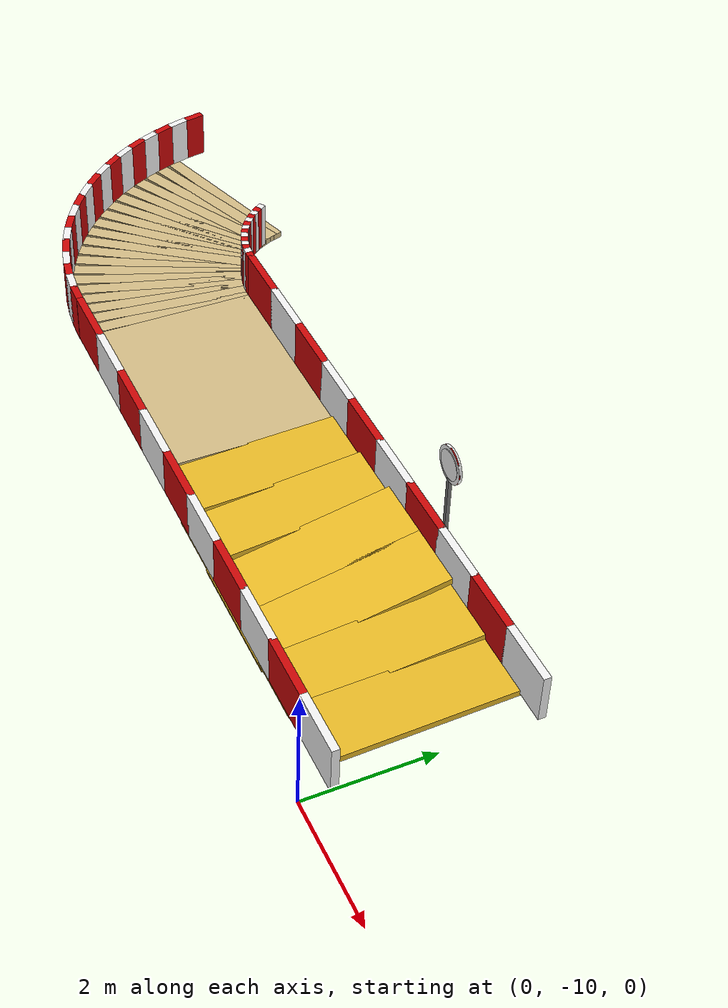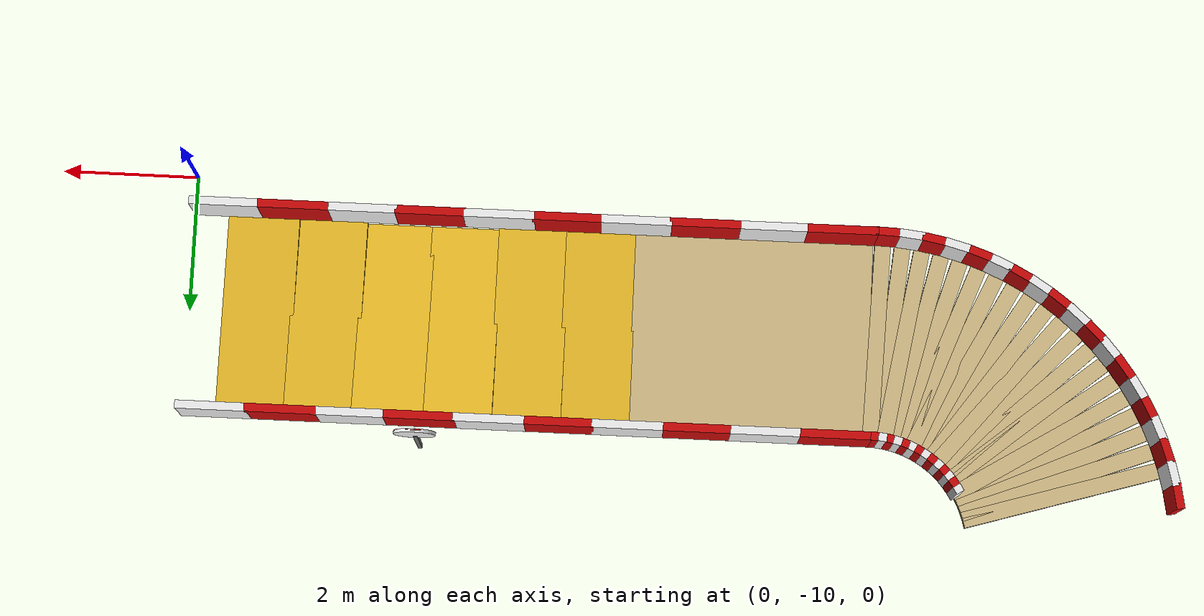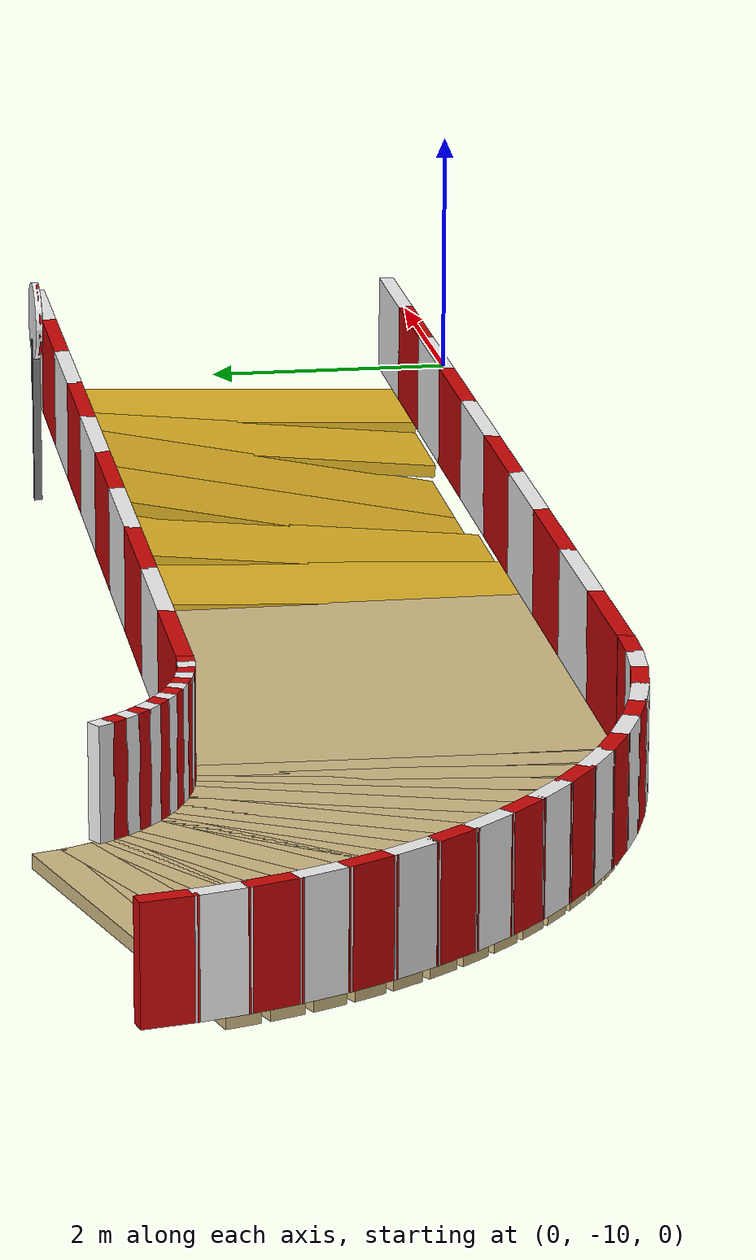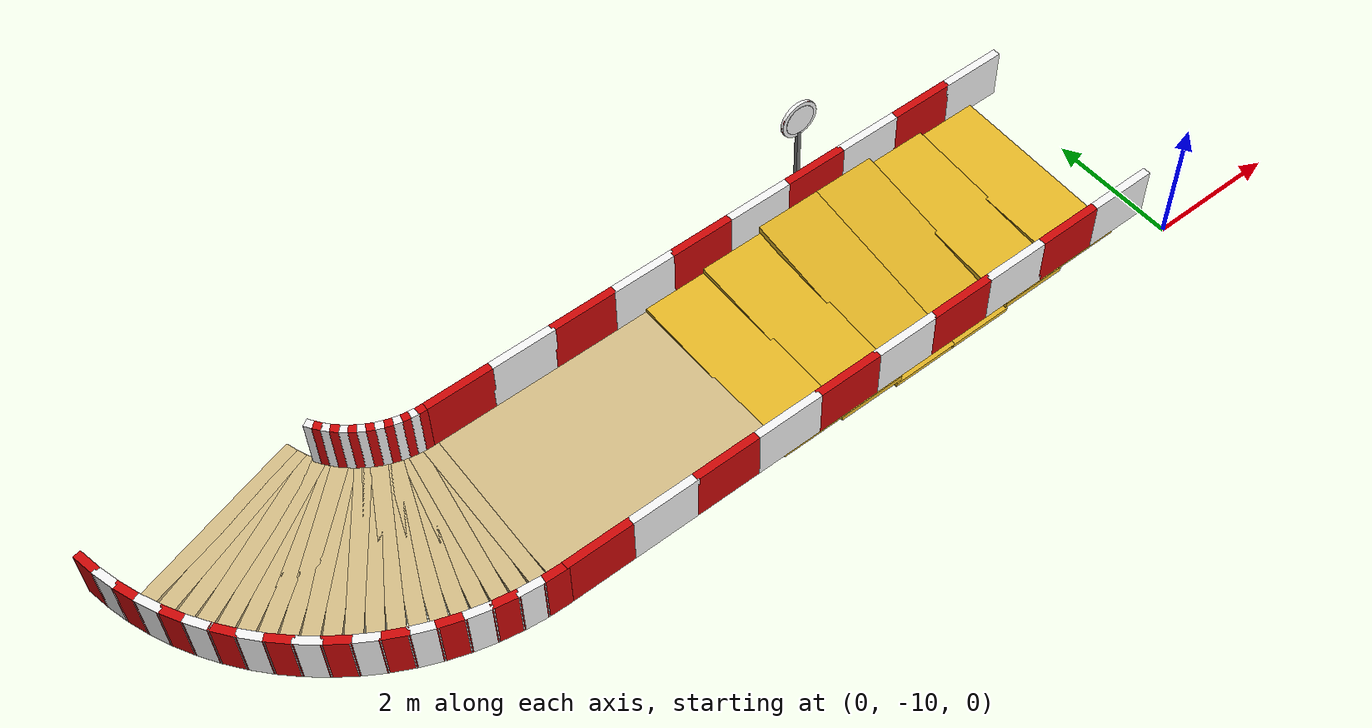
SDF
<sdf version="1.6">
 <world name="evrenos_teknofest_2026">
  <include><uri>model://sun</uri></include>
  <model name="main_course">
   <static>true</static>
   <link name="bottom_before_turn_0">
    <pose>-8.2500 -8.0000 -0.0500 0.000000 0.000000 0.000000</pose>
    <collision name="bottom_before_turn_0_collision">
     <geometry><box><size>3.5000 3.0000 0.1000</size></box></geometry>
    </collision>
    <visual name="bottom_before_turn_0_visual">
     <geometry><box><size>3.5000 3.0000 0.1000</size></box></geometry>
     <material><ambient>0.82 0.73 0.52 1</ambient><diffuse>0.82 0.73 0.52 1</diffuse></material>
    </visual>
   </link>
   <link name="side_slope_0">
    <pose>-1.0000 -8.0000 -0.0500 0.040000 0.000000 0.000000</pose>
    <collision name="side_slope_0_collision">
     <geometry><box><size>1.0500 3.0000 0.1000</size></box></geometry>
    </collision>
    <visual name="side_slope_0_visual">
     <geometry><box><size>1.0500 3.0000 0.1000</size></box></geometry>
     <material><ambient>0.9 0.72 0.15 1</ambient><diffuse>0.9 0.72 0.15 1</diffuse></material>
    </visual>
   </link>
   <link name="side_slope_1">
    <pose>-2.0000 -8.0000 -0.0500 0.100000 0.000000 0.000000</pose>
    <collision name="side_slope_1_collision">
     <geometry><box><size>1.0500 3.0000 0.1000</size></box></geometry>
    </collision>
    <visual name="side_slope_1_visual">
     <geometry><box><size>1.0500 3.0000 0.1000</size></box></geometry>
     <material><ambient>0.9 0.72 0.15 1</ambient><diffuse>0.9 0.72 0.15 1</diffuse></material>
    </visual>
   </link>
   <link name="side_slope_2">
    <pose>-3.0000 -8.0000 -0.0500 0.197396 0.000000 0.000000</pose>
    <collision name="side_slope_2_collision">
     <geometry><box><size>1.0500 3.0000 0.1000</size></box></geometry>
    </collision>
    <visual name="side_slope_2_visual">
     <geometry><box><size>1.0500 3.0000 0.1000</size></box></geometry>
     <material><ambient>0.9 0.72 0.15 1</ambient><diffuse>0.9 0.72 0.15 1</diffuse></material>
    </visual>
   </link>
   <link name="side_slope_3">
    <pose>-4.0000 -8.0000 -0.0500 0.197396 0.000000 0.000000</pose>
    <collision name="side_slope_3_collision">
     <geometry><box><size>1.0500 3.0000 0.1000</size></box></geometry>
    </collision>
    <visual name="side_slope_3_visual">
     <geometry><box><size>1.0500 3.0000 0.1000</size></box></geometry>
     <material><ambient>0.9 0.72 0.15 1</ambient><diffuse>0.9 0.72 0.15 1</diffuse></material>
    </visual>
   </link>
   <link name="side_slope_4">
    <pose>-5.0000 -8.0000 -0.0500 0.100000 0.000000 0.000000</pose>
    <collision name="side_slope_4_collision">
     <geometry><box><size>1.0500 3.0000 0.1000</size></box></geometry>
    </collision>
    <visual name="side_slope_4_visual">
     <geometry><box><size>1.0500 3.0000 0.1000</size></box></geometry>
     <material><ambient>0.9 0.72 0.15 1</ambient><diffuse>0.9 0.72 0.15 1</diffuse></material>
    </visual>
   </link>
   <link name="side_slope_5">
    <pose>-6.0000 -8.0000 -0.0500 0.040000 0.000000 0.000000</pose>
    <collision name="side_slope_5_collision">
     <geometry><box><size>1.0500 3.0000 0.1000</size></box></geometry>
    </collision>
    <visual name="side_slope_5_visual">
     <geometry><box><size>1.0500 3.0000 0.1000</size></box></geometry>
     <material><ambient>0.9 0.72 0.15 1</ambient><diffuse>0.9 0.72 0.15 1</diffuse></material>
    </visual>
   </link>
   <link name="left_turn_road_0">
    <pose>-10.0982 -7.9984 -0.0500 0.000000 0.000000 -3.174318</pose>
    <collision name="left_turn_road_0_collision">
     <geometry><box><size>0.2356 3.0000 0.1000</size></box></geometry>
    </collision>
    <visual name="left_turn_road_0_visual">
     <geometry><box><size>0.2356 3.0000 0.1000</size></box></geometry>
     <material><ambient>0.82 0.73 0.52 1</ambient><diffuse>0.82 0.73 0.52 1</diffuse></material>
    </visual>
   </link>
   <link name="left_turn_road_1">
    <pose>-10.2941 -7.9856 -0.0500 0.000000 0.000000 -3.239767</pose>
    <collision name="left_turn_road_1_collision">
     <geometry><box><size>0.2356 3.0000 0.1000</size></box></geometry>
    </collision>
    <visual name="left_turn_road_1_visual">
     <geometry><box><size>0.2356 3.0000 0.1000</size></box></geometry>
     <material><ambient>0.82 0.73 0.52 1</ambient><diffuse>0.82 0.73 0.52 1</diffuse></material>
    </visual>
   </link>
   <link name="left_turn_road_2">
    <pose>-10.4887 -7.9599 -0.0500 0.000000 0.000000 -3.305217</pose>
    <collision name="left_turn_road_2_collision">
     <geometry><box><size>0.2356 3.0000 0.1000</size></box></geometry>
    </collision>
    <visual name="left_turn_road_2_visual">
     <geometry><box><size>0.2356 3.0000 0.1000</size></box></geometry>
     <material><ambient>0.82 0.73 0.52 1</ambient><diffuse>0.82 0.73 0.52 1</diffuse></material>
    </visual>
   </link>
   <link name="left_turn_road_3">
    <pose>-10.6812 -7.9216 -0.0500 0.000000 0.000000 -3.370667</pose>
    <collision name="left_turn_road_3_collision">
     <geometry><box><size>0.2356 3.0000 0.1000</size></box></geometry>
    </collision>
    <visual name="left_turn_road_3_visual">
     <geometry><box><size>0.2356 3.0000 0.1000</size></box></geometry>
     <material><ambient>0.82 0.73 0.52 1</ambient><diffuse>0.82 0.73 0.52 1</diffuse></material>
    </visual>
   </link>
   <link name="left_turn_road_4">
    <pose>-10.8709 -7.8708 -0.0500 0.000000 0.000000 -3.436117</pose>
    <collision name="left_turn_road_4_collision">
     <geometry><box><size>0.2356 3.0000 0.1000</size></box></geometry>
    </collision>
    <visual name="left_turn_road_4_visual">
     <geometry><box><size>0.2356 3.0000 0.1000</size></box></geometry>
     <material><ambient>0.82 0.73 0.52 1</ambient><diffuse>0.82 0.73 0.52 1</diffuse></material>
    </visual>
   </link>
   <link name="left_turn_road_5">
    <pose>-11.0568 -7.8077 -0.0500 0.000000 0.000000 -3.501567</pose>
    <collision name="left_turn_road_5_collision">
     <geometry><box><size>0.2356 3.0000 0.1000</size></box></geometry>
    </collision>
    <visual name="left_turn_road_5_visual">
     <geometry><box><size>0.2356 3.0000 0.1000</size></box></geometry>
     <material><ambient>0.82 0.73 0.52 1</ambient><diffuse>0.82 0.73 0.52 1</diffuse></material>
    </visual>
   </link>
   <link name="left_turn_road_6">
    <pose>-11.2381 -7.7326 -0.0500 0.000000 0.000000 -3.567017</pose>
    <collision name="left_turn_road_6_collision">
     <geometry><box><size>0.2356 3.0000 0.1000</size></box></geometry>
    </collision>
    <visual name="left_turn_road_6_visual">
     <geometry><box><size>0.2356 3.0000 0.1000</size></box></geometry>
     <material><ambient>0.82 0.73 0.52 1</ambient><diffuse>0.82 0.73 0.52 1</diffuse></material>
    </visual>
   </link>
   <link name="left_turn_road_7">
    <pose>-11.4142 -7.6458 -0.0500 0.000000 0.000000 -3.632467</pose>
    <collision name="left_turn_road_7_collision">
     <geometry><box><size>0.2356 3.0000 0.1000</size></box></geometry>
    </collision>
    <visual name="left_turn_road_7_visual">
     <geometry><box><size>0.2356 3.0000 0.1000</size></box></geometry>
     <material><ambient>0.82 0.73 0.52 1</ambient><diffuse>0.82 0.73 0.52 1</diffuse></material>
    </visual>
   </link>
   <link name="left_turn_road_8">
    <pose>-11.5842 -7.5476 -0.0500 0.000000 0.000000 -3.697916</pose>
    <collision name="left_turn_road_8_collision">
     <geometry><box><size>0.2356 3.0000 0.1000</size></box></geometry>
    </collision>
    <visual name="left_turn_road_8_visual">
     <geometry><box><size>0.2356 3.0000 0.1000</size></box></geometry>
     <material><ambient>0.82 0.73 0.52 1</ambient><diffuse>0.82 0.73 0.52 1</diffuse></material>
    </visual>
   </link>
   <link name="left_turn_road_9">
    <pose>-11.7474 -7.4385 -0.0500 0.000000 0.000000 -3.763366</pose>
    <collision name="left_turn_road_9_collision">
     <geometry><box><size>0.2356 3.0000 0.1000</size></box></geometry>
    </collision>
    <visual name="left_turn_road_9_visual">
     <geometry><box><size>0.2356 3.0000 0.1000</size></box></geometry>
     <material><ambient>0.82 0.73 0.52 1</ambient><diffuse>0.82 0.73 0.52 1</diffuse></material>
    </visual>
   </link>
   <link name="left_turn_road_10">
    <pose>-11.9032 -7.3190 -0.0500 0.000000 0.000000 -3.828816</pose>
    <collision name="left_turn_road_10_collision">
     <geometry><box><size>0.2356 3.0000 0.1000</size></box></geometry>
    </collision>
    <visual name="left_turn_road_10_visual">
     <geometry><box><size>0.2356 3.0000 0.1000</size></box></geometry>
     <material><ambient>0.82 0.73 0.52 1</ambient><diffuse>0.82 0.73 0.52 1</diffuse></material>
    </visual>
   </link>
   <link name="left_turn_road_11">
    <pose>-12.0508 -7.1896 -0.0500 0.000000 0.000000 -3.894266</pose>
    <collision name="left_turn_road_11_collision">
     <geometry><box><size>0.2356 3.0000 0.1000</size></box></geometry>
    </collision>
    <visual name="left_turn_road_11_visual">
     <geometry><box><size>0.2356 3.0000 0.1000</size></box></geometry>
     <material><ambient>0.82 0.73 0.52 1</ambient><diffuse>0.82 0.73 0.52 1</diffuse></material>
    </visual>
   </link>
   <link name="left_turn_road_12">
    <pose>-12.1896 -7.0508 -0.0500 0.000000 0.000000 -3.959716</pose>
    <collision name="left_turn_road_12_collision">
     <geometry><box><size>0.2356 3.0000 0.1000</size></box></geometry>
    </collision>
    <visual name="left_turn_road_12_visual">
     <geometry><box><size>0.2356 3.0000 0.1000</size></box></geometry>
     <material><ambient>0.82 0.73 0.52 1</ambient><diffuse>0.82 0.73 0.52 1</diffuse></material>
    </visual>
   </link>
   <link name="left_turn_road_13">
    <pose>-12.3190 -6.9032 -0.0500 0.000000 0.000000 -4.025166</pose>
    <collision name="left_turn_road_13_collision">
     <geometry><box><size>0.2356 3.0000 0.1000</size></box></geometry>
    </collision>
    <visual name="left_turn_road_13_visual">
     <geometry><box><size>0.2356 3.0000 0.1000</size></box></geometry>
     <material><ambient>0.82 0.73 0.52 1</ambient><diffuse>0.82 0.73 0.52 1</diffuse></material>
    </visual>
   </link>
   <link name="left_turn_road_14">
    <pose>-12.4385 -6.7474 -0.0500 0.000000 0.000000 -4.090615</pose>
    <collision name="left_turn_road_14_collision">
     <geometry><box><size>0.2356 3.0000 0.1000</size></box></geometry>
    </collision>
    <visual name="left_turn_road_14_visual">
     <geometry><box><size>0.2356 3.0000 0.1000</size></box></geometry>
     <material><ambient>0.82 0.73 0.52 1</ambient><diffuse>0.82 0.73 0.52 1</diffuse></material>
    </visual>
   </link>
   <link name="left_turn_road_15">
    <pose>-12.5476 -6.5842 -0.0500 0.000000 0.000000 -4.156065</pose>
    <collision name="left_turn_road_15_collision">
     <geometry><box><size>0.2356 3.0000 0.1000</size></box></geometry>
    </collision>
    <visual name="left_turn_road_15_visual">
     <geometry><box><size>0.2356 3.0000 0.1000</size></box></geometry>
     <material><ambient>0.82 0.73 0.52 1</ambient><diffuse>0.82 0.73 0.52 1</diffuse></material>
    </visual>
   </link>
   <link name="left_turn_road_16">
    <pose>-12.6458 -6.4142 -0.0500 0.000000 0.000000 -4.221515</pose>
    <collision name="left_turn_road_16_collision">
     <geometry><box><size>0.2356 3.0000 0.1000</size></box></geometry>
    </collision>
    <visual name="left_turn_road_16_visual">
     <geometry><box><size>0.2356 3.0000 0.1000</size></box></geometry>
     <material><ambient>0.82 0.73 0.52 1</ambient><diffuse>0.82 0.73 0.52 1</diffuse></material>
    </visual>
   </link>
   <link name="left_turn_road_17">
    <pose>-12.7326 -6.2381 -0.0500 0.000000 0.000000 -4.286965</pose>
    <collision name="left_turn_road_17_collision">
     <geometry><box><size>0.2356 3.0000 0.1000</size></box></geometry>
    </collision>
    <visual name="left_turn_road_17_visual">
     <geometry><box><size>0.2356 3.0000 0.1000</size></box></geometry>
     <material><ambient>0.82 0.73 0.52 1</ambient><diffuse>0.82 0.73 0.52 1</diffuse></material>
    </visual>
   </link>
   <link name="left_turn_road_18">
    <pose>-12.8077 -6.0568 -0.0500 0.000000 0.000000 -4.352415</pose>
    <collision name="left_turn_road_18_collision">
     <geometry><box><size>0.2356 3.0000 0.1000</size></box></geometry>
    </collision>
    <visual name="left_turn_road_18_visual">
     <geometry><box><size>0.2356 3.0000 0.1000</size></box></geometry>
     <material><ambient>0.82 0.73 0.52 1</ambient><diffuse>0.82 0.73 0.52 1</diffuse></material>
    </visual>
   </link>
   <link name="left_turn_road_19">
    <pose>-12.8708 -5.8709 -0.0500 0.000000 0.000000 -4.417865</pose>
    <collision name="left_turn_road_19_collision">
     <geometry><box><size>0.2356 3.0000 0.1000</size></box></geometry>
    </collision>
    <visual name="left_turn_road_19_visual">
     <geometry><box><size>0.2356 3.0000 0.1000</size></box></geometry>
     <material><ambient>0.82 0.73 0.52 1</ambient><diffuse>0.82 0.73 0.52 1</diffuse></material>
    </visual>
   </link>
   <link name="bottom_bar_-1_0">
    <pose>-9.5000 -9.5000 0.4000 0.000000 0.000000 0.000000</pose>
    <collision name="bottom_bar_-1_0_collision">
     <geometry><box><size>1.0300 0.1200 0.8000</size></box></geometry>
    </collision>
    <visual name="bottom_bar_-1_0_visual">
     <geometry><box><size>1.0300 0.1200 0.8000</size></box></geometry>
     <material><ambient>0.8 0.03 0.03 1</ambient><diffuse>0.8 0.03 0.03 1</diffuse></material>
    </visual>
   </link>
   <link name="bottom_bar_-1_1">
    <pose>-8.5000 -9.5000 0.4000 0.000000 0.000000 0.000000</pose>
    <collision name="bottom_bar_-1_1_collision">
     <geometry><box><size>1.0300 0.1200 0.8000</size></box></geometry>
    </collision>
    <visual name="bottom_bar_-1_1_visual">
     <geometry><box><size>1.0300 0.1200 0.8000</size></box></geometry>
     <material><ambient>0.95 0.95 0.95 1</ambient><diffuse>0.95 0.95 0.95 1</diffuse></material>
    </visual>
   </link>
   <link name="bottom_bar_-1_2">
    <pose>-7.5000 -9.5000 0.4000 0.000000 0.000000 0.000000</pose>
    <collision name="bottom_bar_-1_2_collision">
     <geometry><box><size>1.0300 0.1200 0.8000</size></box></geometry>
    </collision>
    <visual name="bottom_bar_-1_2_visual">
     <geometry><box><size>1.0300 0.1200 0.8000</size></box></geometry>
     <material><ambient>0.8 0.03 0.03 1</ambient><diffuse>0.8 0.03 0.03 1</diffuse></material>
    </visual>
   </link>
   <link name="bottom_bar_-1_3">
    <pose>-6.5000 -9.5000 0.4000 0.000000 0.000000 0.000000</pose>
    <collision name="bottom_bar_-1_3_collision">
     <geometry><box><size>1.0300 0.1200 0.8000</size></box></geometry>
    </collision>
    <visual name="bottom_bar_-1_3_visual">
     <geometry><box><size>1.0300 0.1200 0.8000</size></box></geometry>
     <material><ambient>0.95 0.95 0.95 1</ambient><diffuse>0.95 0.95 0.95 1</diffuse></material>
    </visual>
   </link>
   <link name="bottom_bar_-1_4">
    <pose>-5.5000 -9.5000 0.4000 0.000000 0.000000 0.000000</pose>
    <collision name="bottom_bar_-1_4_collision">
     <geometry><box><size>1.0300 0.1200 0.8000</size></box></geometry>
    </collision>
    <visual name="bottom_bar_-1_4_visual">
     <geometry><box><size>1.0300 0.1200 0.8000</size></box></geometry>
     <material><ambient>0.8 0.03 0.03 1</ambient><diffuse>0.8 0.03 0.03 1</diffuse></material>
    </visual>
   </link>
   <link name="bottom_bar_-1_5">
    <pose>-4.5000 -9.5000 0.4000 0.000000 0.000000 0.000000</pose>
    <collision name="bottom_bar_-1_5_collision">
     <geometry><box><size>1.0300 0.1200 0.8000</size></box></geometry>
    </collision>
    <visual name="bottom_bar_-1_5_visual">
     <geometry><box><size>1.0300 0.1200 0.8000</size></box></geometry>
     <material><ambient>0.95 0.95 0.95 1</ambient><diffuse>0.95 0.95 0.95 1</diffuse></material>
    </visual>
   </link>
   <link name="bottom_bar_-1_6">
    <pose>-3.5000 -9.5000 0.4000 0.000000 0.000000 0.000000</pose>
    <collision name="bottom_bar_-1_6_collision">
     <geometry><box><size>1.0300 0.1200 0.8000</size></box></geometry>
    </collision>
    <visual name="bottom_bar_-1_6_visual">
     <geometry><box><size>1.0300 0.1200 0.8000</size></box></geometry>
     <material><ambient>0.8 0.03 0.03 1</ambient><diffuse>0.8 0.03 0.03 1</diffuse></material>
    </visual>
   </link>
   <link name="bottom_bar_-1_7">
    <pose>-2.5000 -9.5000 0.4000 0.000000 0.000000 0.000000</pose>
    <collision name="bottom_bar_-1_7_collision">
     <geometry><box><size>1.0300 0.1200 0.8000</size></box></geometry>
    </collision>
    <visual name="bottom_bar_-1_7_visual">
     <geometry><box><size>1.0300 0.1200 0.8000</size></box></geometry>
     <material><ambient>0.95 0.95 0.95 1</ambient><diffuse>0.95 0.95 0.95 1</diffuse></material>
    </visual>
   </link>
   <link name="bottom_bar_-1_8">
    <pose>-1.5000 -9.5000 0.4000 0.000000 0.000000 0.000000</pose>
    <collision name="bottom_bar_-1_8_collision">
     <geometry><box><size>1.0300 0.1200 0.8000</size></box></geometry>
    </collision>
    <visual name="bottom_bar_-1_8_visual">
     <geometry><box><size>1.0300 0.1200 0.8000</size></box></geometry>
     <material><ambient>0.8 0.03 0.03 1</ambient><diffuse>0.8 0.03 0.03 1</diffuse></material>
    </visual>
   </link>
   <link name="bottom_bar_-1_9">
    <pose>-0.5000 -9.5000 0.4000 0.000000 0.000000 0.000000</pose>
    <collision name="bottom_bar_-1_9_collision">
     <geometry><box><size>1.0300 0.1200 0.8000</size></box></geometry>
    </collision>
    <visual name="bottom_bar_-1_9_visual">
     <geometry><box><size>1.0300 0.1200 0.8000</size></box></geometry>
     <material><ambient>0.95 0.95 0.95 1</ambient><diffuse>0.95 0.95 0.95 1</diffuse></material>
    </visual>
   </link>
   <link name="bottom_bar_1_0">
    <pose>-9.5000 -6.5000 0.4000 0.000000 0.000000 0.000000</pose>
    <collision name="bottom_bar_1_0_collision">
     <geometry><box><size>1.0300 0.1200 0.8000</size></box></geometry>
    </collision>
    <visual name="bottom_bar_1_0_visual">
     <geometry><box><size>1.0300 0.1200 0.8000</size></box></geometry>
     <material><ambient>0.8 0.03 0.03 1</ambient><diffuse>0.8 0.03 0.03 1</diffuse></material>
    </visual>
   </link>
   <link name="bottom_bar_1_1">
    <pose>-8.5000 -6.5000 0.4000 0.000000 0.000000 0.000000</pose>
    <collision name="bottom_bar_1_1_collision">
     <geometry><box><size>1.0300 0.1200 0.8000</size></box></geometry>
    </collision>
    <visual name="bottom_bar_1_1_visual">
     <geometry><box><size>1.0300 0.1200 0.8000</size></box></geometry>
     <material><ambient>0.95 0.95 0.95 1</ambient><diffuse>0.95 0.95 0.95 1</diffuse></material>
    </visual>
   </link>
   <link name="bottom_bar_1_2">
    <pose>-7.5000 -6.5000 0.4000 0.000000 0.000000 0.000000</pose>
    <collision name="bottom_bar_1_2_collision">
     <geometry><box><size>1.0300 0.1200 0.8000</size></box></geometry>
    </collision>
    <visual name="bottom_bar_1_2_visual">
     <geometry><box><size>1.0300 0.1200 0.8000</size></box></geometry>
     <material><ambient>0.8 0.03 0.03 1</ambient><diffuse>0.8 0.03 0.03 1</diffuse></material>
    </visual>
   </link>
   <link name="bottom_bar_1_3">
    <pose>-6.5000 -6.5000 0.4000 0.000000 0.000000 0.000000</pose>
    <collision name="bottom_bar_1_3_collision">
     <geometry><box><size>1.0300 0.1200 0.8000</size></box></geometry>
    </collision>
    <visual name="bottom_bar_1_3_visual">
     <geometry><box><size>1.0300 0.1200 0.8000</size></box></geometry>
     <material><ambient>0.95 0.95 0.95 1</ambient><diffuse>0.95 0.95 0.95 1</diffuse></material>
    </visual>
   </link>
   <link name="bottom_bar_1_4">
    <pose>-5.5000 -6.5000 0.4000 0.000000 0.000000 0.000000</pose>
    <collision name="bottom_bar_1_4_collision">
     <geometry><box><size>1.0300 0.1200 0.8000</size></box></geometry>
    </collision>
    <visual name="bottom_bar_1_4_visual">
     <geometry><box><size>1.0300 0.1200 0.8000</size></box></geometry>
     <material><ambient>0.8 0.03 0.03 1</ambient><diffuse>0.8 0.03 0.03 1</diffuse></material>
    </visual>
   </link>
   <link name="bottom_bar_1_5">
    <pose>-4.5000 -6.5000 0.4000 0.000000 0.000000 0.000000</pose>
    <collision name="bottom_bar_1_5_collision">
     <geometry><box><size>1.0300 0.1200 0.8000</size></box></geometry>
    </collision>
    <visual name="bottom_bar_1_5_visual">
     <geometry><box><size>1.0300 0.1200 0.8000</size></box></geometry>
     <material><ambient>0.95 0.95 0.95 1</ambient><diffuse>0.95 0.95 0.95 1</diffuse></material>
    </visual>
   </link>
   <link name="bottom_bar_1_6">
    <pose>-3.5000 -6.5000 0.4000 0.000000 0.000000 0.000000</pose>
    <collision name="bottom_bar_1_6_collision">
     <geometry><box><size>1.0300 0.1200 0.8000</size></box></geometry>
    </collision>
    <visual name="bottom_bar_1_6_visual">
     <geometry><box><size>1.0300 0.1200 0.8000</size></box></geometry>
     <material><ambient>0.8 0.03 0.03 1</ambient><diffuse>0.8 0.03 0.03 1</diffuse></material>
    </visual>
   </link>
   <link name="bottom_bar_1_7">
    <pose>-2.5000 -6.5000 0.4000 0.000000 0.000000 0.000000</pose>
    <collision name="bottom_bar_1_7_collision">
     <geometry><box><size>1.0300 0.1200 0.8000</size></box></geometry>
    </collision>
    <visual name="bottom_bar_1_7_visual">
     <geometry><box><size>1.0300 0.1200 0.8000</size></box></geometry>
     <material><ambient>0.95 0.95 0.95 1</ambient><diffuse>0.95 0.95 0.95 1</diffuse></material>
    </visual>
   </link>
   <link name="bottom_bar_1_8">
    <pose>-1.5000 -6.5000 0.4000 0.000000 0.000000 0.000000</pose>
    <collision name="bottom_bar_1_8_collision">
     <geometry><box><size>1.0300 0.1200 0.8000</size></box></geometry>
    </collision>
    <visual name="bottom_bar_1_8_visual">
     <geometry><box><size>1.0300 0.1200 0.8000</size></box></geometry>
     <material><ambient>0.8 0.03 0.03 1</ambient><diffuse>0.8 0.03 0.03 1</diffuse></material>
    </visual>
   </link>
   <link name="bottom_bar_1_9">
    <pose>-0.5000 -6.5000 0.4000 0.000000 0.000000 0.000000</pose>
    <collision name="bottom_bar_1_9_collision">
     <geometry><box><size>1.0300 0.1200 0.8000</size></box></geometry>
    </collision>
    <visual name="bottom_bar_1_9_visual">
     <geometry><box><size>1.0300 0.1200 0.8000</size></box></geometry>
     <material><ambient>0.95 0.95 0.95 1</ambient><diffuse>0.95 0.95 0.95 1</diffuse></material>
    </visual>
   </link>
   <link name="left_turn_bar_0_0">
    <pose>-10.0561 -6.4990 0.4000 0.000000 0.000000 -3.178993</pose>
    <collision name="left_turn_bar_0_0_collision">
     <geometry><box><size>0.1234 0.1200 0.8000</size></box></geometry>
    </collision>
    <visual name="left_turn_bar_0_0_visual">
     <geometry><box><size>0.1234 0.1200 0.8000</size></box></geometry>
     <material><ambient>0.8 0.03 0.03 1</ambient><diffuse>0.8 0.03 0.03 1</diffuse></material>
    </visual>
   </link>
   <link name="left_turn_bar_0_1">
    <pose>-10.1679 -6.4906 0.4000 0.000000 0.000000 -3.253792</pose>
    <collision name="left_turn_bar_0_1_collision">
     <geometry><box><size>0.1234 0.1200 0.8000</size></box></geometry>
    </collision>
    <visual name="left_turn_bar_0_1_visual">
     <geometry><box><size>0.1234 0.1200 0.8000</size></box></geometry>
     <material><ambient>0.95 0.95 0.95 1</ambient><diffuse>0.95 0.95 0.95 1</diffuse></material>
    </visual>
   </link>
   <link name="left_turn_bar_0_2">
    <pose>-10.2789 -6.4738 0.4000 0.000000 0.000000 -3.328592</pose>
    <collision name="left_turn_bar_0_2_collision">
     <geometry><box><size>0.1234 0.1200 0.8000</size></box></geometry>
    </collision>
    <visual name="left_turn_bar_0_2_visual">
     <geometry><box><size>0.1234 0.1200 0.8000</size></box></geometry>
     <material><ambient>0.8 0.03 0.03 1</ambient><diffuse>0.8 0.03 0.03 1</diffuse></material>
    </visual>
   </link>
   <link name="left_turn_bar_0_3">
    <pose>-10.3882 -6.4489 0.4000 0.000000 0.000000 -3.403392</pose>
    <collision name="left_turn_bar_0_3_collision">
     <geometry><box><size>0.1234 0.1200 0.8000</size></box></geometry>
    </collision>
    <visual name="left_turn_bar_0_3_visual">
     <geometry><box><size>0.1234 0.1200 0.8000</size></box></geometry>
     <material><ambient>0.95 0.95 0.95 1</ambient><diffuse>0.95 0.95 0.95 1</diffuse></material>
    </visual>
   </link>
   <link name="left_turn_bar_0_4">
    <pose>-10.4954 -6.4158 0.4000 0.000000 0.000000 -3.478192</pose>
    <collision name="left_turn_bar_0_4_collision">
     <geometry><box><size>0.1234 0.1200 0.8000</size></box></geometry>
    </collision>
    <visual name="left_turn_bar_0_4_visual">
     <geometry><box><size>0.1234 0.1200 0.8000</size></box></geometry>
     <material><ambient>0.8 0.03 0.03 1</ambient><diffuse>0.8 0.03 0.03 1</diffuse></material>
    </visual>
   </link>
   <link name="left_turn_bar_0_5">
    <pose>-10.5998 -6.3748 0.4000 0.000000 0.000000 -3.552992</pose>
    <collision name="left_turn_bar_0_5_collision">
     <geometry><box><size>0.1234 0.1200 0.8000</size></box></geometry>
    </collision>
    <visual name="left_turn_bar_0_5_visual">
     <geometry><box><size>0.1234 0.1200 0.8000</size></box></geometry>
     <material><ambient>0.95 0.95 0.95 1</ambient><diffuse>0.95 0.95 0.95 1</diffuse></material>
    </visual>
   </link>
   <link name="left_turn_bar_0_6">
    <pose>-10.7009 -6.3262 0.4000 0.000000 0.000000 -3.627792</pose>
    <collision name="left_turn_bar_0_6_collision">
     <geometry><box><size>0.1234 0.1200 0.8000</size></box></geometry>
    </collision>
    <visual name="left_turn_bar_0_6_visual">
     <geometry><box><size>0.1234 0.1200 0.8000</size></box></geometry>
     <material><ambient>0.8 0.03 0.03 1</ambient><diffuse>0.8 0.03 0.03 1</diffuse></material>
    </visual>
   </link>
   <link name="left_turn_bar_0_7">
    <pose>-10.7980 -6.2701 0.4000 0.000000 0.000000 -3.702591</pose>
    <collision name="left_turn_bar_0_7_collision">
     <geometry><box><size>0.1234 0.1200 0.8000</size></box></geometry>
    </collision>
    <visual name="left_turn_bar_0_7_visual">
     <geometry><box><size>0.1234 0.1200 0.8000</size></box></geometry>
     <material><ambient>0.95 0.95 0.95 1</ambient><diffuse>0.95 0.95 0.95 1</diffuse></material>
    </visual>
   </link>
   <link name="left_turn_bar_0_8">
    <pose>-10.8907 -6.2069 0.4000 0.000000 0.000000 -3.777391</pose>
    <collision name="left_turn_bar_0_8_collision">
     <geometry><box><size>0.1234 0.1200 0.8000</size></box></geometry>
    </collision>
    <visual name="left_turn_bar_0_8_visual">
     <geometry><box><size>0.1234 0.1200 0.8000</size></box></geometry>
     <material><ambient>0.8 0.03 0.03 1</ambient><diffuse>0.8 0.03 0.03 1</diffuse></material>
    </visual>
   </link>
   <link name="left_turn_bar_0_9">
    <pose>-10.9784 -6.1370 0.4000 0.000000 0.000000 -3.852191</pose>
    <collision name="left_turn_bar_0_9_collision">
     <geometry><box><size>0.1234 0.1200 0.8000</size></box></geometry>
    </collision>
    <visual name="left_turn_bar_0_9_visual">
     <geometry><box><size>0.1234 0.1200 0.8000</size></box></geometry>
     <material><ambient>0.95 0.95 0.95 1</ambient><diffuse>0.95 0.95 0.95 1</diffuse></material>
    </visual>
   </link>
   <link name="left_turn_bar_0_10">
    <pose>-11.0607 -6.0607 0.4000 0.000000 0.000000 -3.926991</pose>
    <collision name="left_turn_bar_0_10_collision">
     <geometry><box><size>0.1234 0.1200 0.8000</size></box></geometry>
    </collision>
    <visual name="left_turn_bar_0_10_visual">
     <geometry><box><size>0.1234 0.1200 0.8000</size></box></geometry>
     <material><ambient>0.8 0.03 0.03 1</ambient><diffuse>0.8 0.03 0.03 1</diffuse></material>
    </visual>
   </link>
   <link name="left_turn_bar_0_11">
    <pose>-11.1370 -5.9784 0.4000 0.000000 0.000000 -4.001791</pose>
    <collision name="left_turn_bar_0_11_collision">
     <geometry><box><size>0.1234 0.1200 0.8000</size></box></geometry>
    </collision>
    <visual name="left_turn_bar_0_11_visual">
     <geometry><box><size>0.1234 0.1200 0.8000</size></box></geometry>
     <material><ambient>0.95 0.95 0.95 1</ambient><diffuse>0.95 0.95 0.95 1</diffuse></material>
    </visual>
   </link>
   <link name="left_turn_bar_0_12">
    <pose>-11.2069 -5.8907 0.4000 0.000000 0.000000 -4.076590</pose>
    <collision name="left_turn_bar_0_12_collision">
     <geometry><box><size>0.1234 0.1200 0.8000</size></box></geometry>
    </collision>
    <visual name="left_turn_bar_0_12_visual">
     <geometry><box><size>0.1234 0.1200 0.8000</size></box></geometry>
     <material><ambient>0.8 0.03 0.03 1</ambient><diffuse>0.8 0.03 0.03 1</diffuse></material>
    </visual>
   </link>
   <link name="left_turn_bar_0_13">
    <pose>-11.2701 -5.7980 0.4000 0.000000 0.000000 -4.151390</pose>
    <collision name="left_turn_bar_0_13_collision">
     <geometry><box><size>0.1234 0.1200 0.8000</size></box></geometry>
    </collision>
    <visual name="left_turn_bar_0_13_visual">
     <geometry><box><size>0.1234 0.1200 0.8000</size></box></geometry>
     <material><ambient>0.95 0.95 0.95 1</ambient><diffuse>0.95 0.95 0.95 1</diffuse></material>
    </visual>
   </link>
   <link name="left_turn_bar_1_0">
    <pose>-10.1683 -9.4969 0.4000 0.000000 0.000000 -3.178993</pose>
    <collision name="left_turn_bar_1_0_collision">
     <geometry><box><size>0.3703 0.1200 0.8000</size></box></geometry>
    </collision>
    <visual name="left_turn_bar_1_0_visual">
     <geometry><box><size>0.3703 0.1200 0.8000</size></box></geometry>
     <material><ambient>0.8 0.03 0.03 1</ambient><diffuse>0.8 0.03 0.03 1</diffuse></material>
    </visual>
   </link>
   <link name="left_turn_bar_1_1">
    <pose>-10.5038 -9.4717 0.4000 0.000000 0.000000 -3.253792</pose>
    <collision name="left_turn_bar_1_1_collision">
     <geometry><box><size>0.3703 0.1200 0.8000</size></box></geometry>
    </collision>
    <visual name="left_turn_bar_1_1_visual">
     <geometry><box><size>0.3703 0.1200 0.8000</size></box></geometry>
     <material><ambient>0.95 0.95 0.95 1</ambient><diffuse>0.95 0.95 0.95 1</diffuse></material>
    </visual>
   </link>
   <link name="left_turn_bar_1_2">
    <pose>-10.8366 -9.4215 0.4000 0.000000 0.000000 -3.328592</pose>
    <collision name="left_turn_bar_1_2_collision">
     <geometry><box><size>0.3703 0.1200 0.8000</size></box></geometry>
    </collision>
    <visual name="left_turn_bar_1_2_visual">
     <geometry><box><size>0.3703 0.1200 0.8000</size></box></geometry>
     <material><ambient>0.8 0.03 0.03 1</ambient><diffuse>0.8 0.03 0.03 1</diffuse></material>
    </visual>
   </link>
   <link name="left_turn_bar_1_3">
    <pose>-11.1647 -9.3467 0.4000 0.000000 0.000000 -3.403392</pose>
    <collision name="left_turn_bar_1_3_collision">
     <geometry><box><size>0.3703 0.1200 0.8000</size></box></geometry>
    </collision>
    <visual name="left_turn_bar_1_3_visual">
     <geometry><box><size>0.3703 0.1200 0.8000</size></box></geometry>
     <material><ambient>0.95 0.95 0.95 1</ambient><diffuse>0.95 0.95 0.95 1</diffuse></material>
    </visual>
   </link>
   <link name="left_turn_bar_1_4">
    <pose>-11.4863 -9.2475 0.4000 0.000000 0.000000 -3.478192</pose>
    <collision name="left_turn_bar_1_4_collision">
     <geometry><box><size>0.3703 0.1200 0.8000</size></box></geometry>
    </collision>
    <visual name="left_turn_bar_1_4_visual">
     <geometry><box><size>0.3703 0.1200 0.8000</size></box></geometry>
     <material><ambient>0.8 0.03 0.03 1</ambient><diffuse>0.8 0.03 0.03 1</diffuse></material>
    </visual>
   </link>
   <link name="left_turn_bar_1_5">
    <pose>-11.7995 -9.1245 0.4000 0.000000 0.000000 -3.552992</pose>
    <collision name="left_turn_bar_1_5_collision">
     <geometry><box><size>0.3703 0.1200 0.8000</size></box></geometry>
    </collision>
    <visual name="left_turn_bar_1_5_visual">
     <geometry><box><size>0.3703 0.1200 0.8000</size></box></geometry>
     <material><ambient>0.95 0.95 0.95 1</ambient><diffuse>0.95 0.95 0.95 1</diffuse></material>
    </visual>
   </link>
   <link name="left_turn_bar_1_6">
    <pose>-12.1027 -8.9785 0.4000 0.000000 0.000000 -3.627792</pose>
    <collision name="left_turn_bar_1_6_collision">
     <geometry><box><size>0.3703 0.1200 0.8000</size></box></geometry>
    </collision>
    <visual name="left_turn_bar_1_6_visual">
     <geometry><box><size>0.3703 0.1200 0.8000</size></box></geometry>
     <material><ambient>0.8 0.03 0.03 1</ambient><diffuse>0.8 0.03 0.03 1</diffuse></material>
    </visual>
   </link>
   <link name="left_turn_bar_1_7">
    <pose>-12.3941 -8.8103 0.4000 0.000000 0.000000 -3.702591</pose>
    <collision name="left_turn_bar_1_7_collision">
     <geometry><box><size>0.3703 0.1200 0.8000</size></box></geometry>
    </collision>
    <visual name="left_turn_bar_1_7_visual">
     <geometry><box><size>0.3703 0.1200 0.8000</size></box></geometry>
     <material><ambient>0.95 0.95 0.95 1</ambient><diffuse>0.95 0.95 0.95 1</diffuse></material>
    </visual>
   </link>
   <link name="left_turn_bar_1_8">
    <pose>-12.6722 -8.6207 0.4000 0.000000 0.000000 -3.777391</pose>
    <collision name="left_turn_bar_1_8_collision">
     <geometry><box><size>0.3703 0.1200 0.8000</size></box></geometry>
    </collision>
    <visual name="left_turn_bar_1_8_visual">
     <geometry><box><size>0.3703 0.1200 0.8000</size></box></geometry>
     <material><ambient>0.8 0.03 0.03 1</ambient><diffuse>0.8 0.03 0.03 1</diffuse></material>
    </visual>
   </link>
   <link name="left_turn_bar_1_9">
    <pose>-12.9353 -8.4109 0.4000 0.000000 0.000000 -3.852191</pose>
    <collision name="left_turn_bar_1_9_collision">
     <geometry><box><size>0.3703 0.1200 0.8000</size></box></geometry>
    </collision>
    <visual name="left_turn_bar_1_9_visual">
     <geometry><box><size>0.3703 0.1200 0.8000</size></box></geometry>
     <material><ambient>0.95 0.95 0.95 1</ambient><diffuse>0.95 0.95 0.95 1</diffuse></material>
    </visual>
   </link>
   <link name="left_turn_bar_1_10">
    <pose>-13.1820 -8.1820 0.4000 0.000000 0.000000 -3.926991</pose>
    <collision name="left_turn_bar_1_10_collision">
     <geometry><box><size>0.3703 0.1200 0.8000</size></box></geometry>
    </collision>
    <visual name="left_turn_bar_1_10_visual">
     <geometry><box><size>0.3703 0.1200 0.8000</size></box></geometry>
     <material><ambient>0.8 0.03 0.03 1</ambient><diffuse>0.8 0.03 0.03 1</diffuse></material>
    </visual>
   </link>
   <link name="left_turn_bar_1_11">
    <pose>-13.4109 -7.9353 0.4000 0.000000 0.000000 -4.001791</pose>
    <collision name="left_turn_bar_1_11_collision">
     <geometry><box><size>0.3703 0.1200 0.8000</size></box></geometry>
    </collision>
    <visual name="left_turn_bar_1_11_visual">
     <geometry><box><size>0.3703 0.1200 0.8000</size></box></geometry>
     <material><ambient>0.95 0.95 0.95 1</ambient><diffuse>0.95 0.95 0.95 1</diffuse></material>
    </visual>
   </link>
   <link name="left_turn_bar_1_12">
    <pose>-13.6207 -7.6722 0.4000 0.000000 0.000000 -4.076590</pose>
    <collision name="left_turn_bar_1_12_collision">
     <geometry><box><size>0.3703 0.1200 0.8000</size></box></geometry>
    </collision>
    <visual name="left_turn_bar_1_12_visual">
     <geometry><box><size>0.3703 0.1200 0.8000</size></box></geometry>
     <material><ambient>0.8 0.03 0.03 1</ambient><diffuse>0.8 0.03 0.03 1</diffuse></material>
    </visual>
   </link>
   <link name="left_turn_bar_1_13">
    <pose>-13.8103 -7.3941 0.4000 0.000000 0.000000 -4.151390</pose>
    <collision name="left_turn_bar_1_13_collision">
     <geometry><box><size>0.3703 0.1200 0.8000</size></box></geometry>
    </collision>
    <visual name="left_turn_bar_1_13_visual">
     <geometry><box><size>0.3703 0.1200 0.8000</size></box></geometry>
     <material><ambient>0.95 0.95 0.95 1</ambient><diffuse>0.95 0.95 0.95 1</diffuse></material>
    </visual>
   </link>
   <link name="left_turn_bar_1_14">
    <pose>-13.9785 -7.1027 0.4000 0.000000 0.000000 -4.226190</pose>
    <collision name="left_turn_bar_1_14_collision">
     <geometry><box><size>0.3703 0.1200 0.8000</size></box></geometry>
    </collision>
    <visual name="left_turn_bar_1_14_visual">
     <geometry><box><size>0.3703 0.1200 0.8000</size></box></geometry>
     <material><ambient>0.8 0.03 0.03 1</ambient><diffuse>0.8 0.03 0.03 1</diffuse></material>
    </visual>
   </link>
   <link name="left_turn_bar_1_15">
    <pose>-14.1245 -6.7995 0.4000 0.000000 0.000000 -4.300990</pose>
    <collision name="left_turn_bar_1_15_collision">
     <geometry><box><size>0.3703 0.1200 0.8000</size></box></geometry>
    </collision>
    <visual name="left_turn_bar_1_15_visual">
     <geometry><box><size>0.3703 0.1200 0.8000</size></box></geometry>
     <material><ambient>0.95 0.95 0.95 1</ambient><diffuse>0.95 0.95 0.95 1</diffuse></material>
    </visual>
   </link>
   <link name="left_turn_bar_1_16">
    <pose>-14.2475 -6.4863 0.4000 0.000000 0.000000 -4.375790</pose>
    <collision name="left_turn_bar_1_16_collision">
     <geometry><box><size>0.3703 0.1200 0.8000</size></box></geometry>
    </collision>
    <visual name="left_turn_bar_1_16_visual">
     <geometry><box><size>0.3703 0.1200 0.8000</size></box></geometry>
     <material><ambient>0.8 0.03 0.03 1</ambient><diffuse>0.8 0.03 0.03 1</diffuse></material>
    </visual>
   </link>
   <link name="left_turn_bar_1_17">
    <pose>-14.3467 -6.1647 0.4000 0.000000 0.000000 -4.450590</pose>
    <collision name="left_turn_bar_1_17_collision">
     <geometry><box><size>0.3703 0.1200 0.8000</size></box></geometry>
    </collision>
    <visual name="left_turn_bar_1_17_visual">
     <geometry><box><size>0.3703 0.1200 0.8000</size></box></geometry>
     <material><ambient>0.95 0.95 0.95 1</ambient><diffuse>0.95 0.95 0.95 1</diffuse></material>
    </visual>
   </link>
   <link name="left_turn_bar_1_18">
    <pose>-14.4215 -5.8366 0.4000 0.000000 0.000000 -4.525389</pose>
    <collision name="left_turn_bar_1_18_collision">
     <geometry><box><size>0.3703 0.1200 0.8000</size></box></geometry>
    </collision>
    <visual name="left_turn_bar_1_18_visual">
     <geometry><box><size>0.3703 0.1200 0.8000</size></box></geometry>
     <material><ambient>0.8 0.03 0.03 1</ambient><diffuse>0.8 0.03 0.03 1</diffuse></material>
    </visual>
   </link>
   <link name="stage3_post">
    <pose>-3.5000 -6.1500 0.6500 0.000000 0.000000 0.000000</pose>
    <collision name="stage3_post_collision">
     <geometry><box><size>0.0600 0.0600 1.3000</size></box></geometry>
    </collision>
    <visual name="stage3_post_visual">
     <geometry><box><size>0.0600 0.0600 1.3000</size></box></geometry>
     <material><ambient>0.45 0.45 0.45 1</ambient><diffuse>0.45 0.45 0.45 1</diffuse></material>
    </visual>
   </link>
   <link name="stage3_disc">
    <pose>-3.5000 -6.1500 1.4500 1.570796 0.000000 0.000000</pose>
    <visual name="stage3_disc_visual">
     <geometry><cylinder><radius>0.3000</radius><length>0.0500</length></cylinder></geometry>
     <material><ambient>0.95 0.95 0.95 1</ambient><diffuse>0.95 0.95 0.95 1</diffuse></material>
    </visual>
   </link>
   <link name="stage3_redring">
    <pose>-3.5000 -6.1620 1.4500 1.570796 0.000000 0.000000</pose>
    <visual name="stage3_redring_visual">
     <geometry><cylinder><radius>0.3000</radius><length>0.0180</length></cylinder></geometry>
     <material><ambient>0.8 0.03 0.03 1</ambient><diffuse>0.8 0.03 0.03 1</diffuse></material>
    </visual>
   </link>
   <link name="stage3_inner">
    <pose>-3.5000 -6.1740 1.4500 1.570796 0.000000 0.000000</pose>
    <visual name="stage3_inner_visual">
     <geometry><cylinder><radius>0.2400</radius><length>0.0200</length></cylinder></geometry>
     <material><ambient>0.95 0.95 0.95 1</ambient><diffuse>0.95 0.95 0.95 1</diffuse></material>
    </visual>
   </link>
  </model>
 </world>
</sdf>
